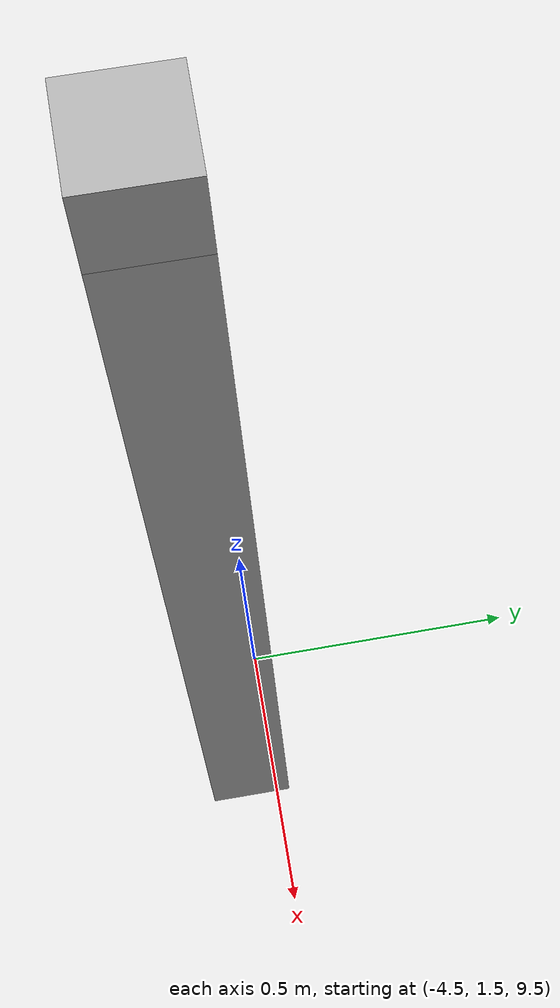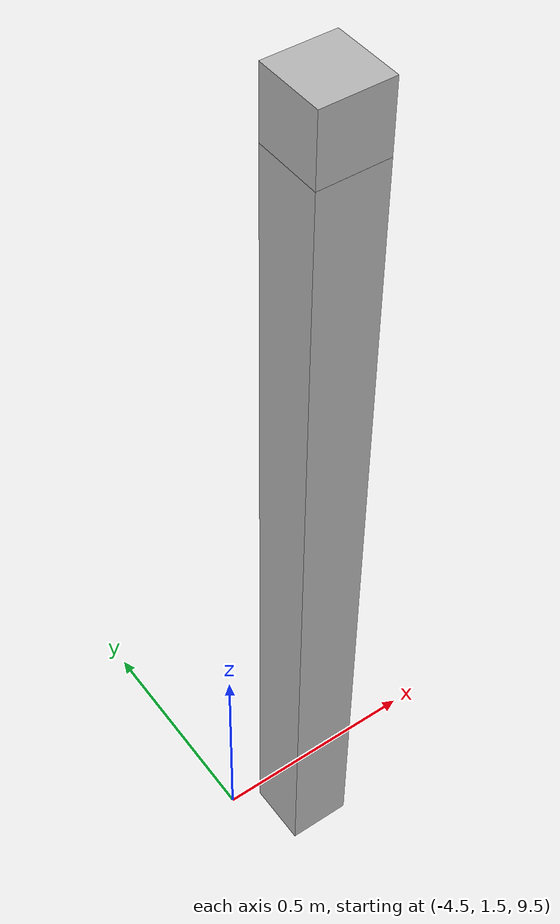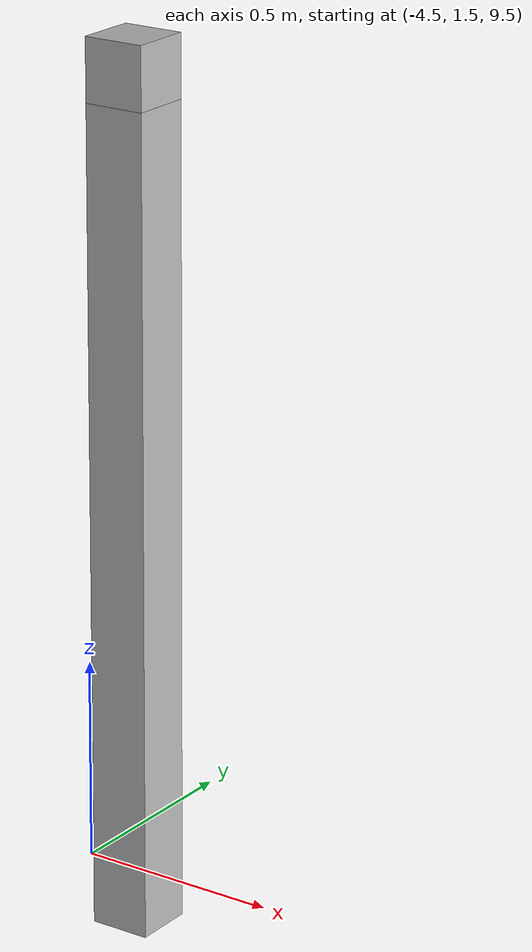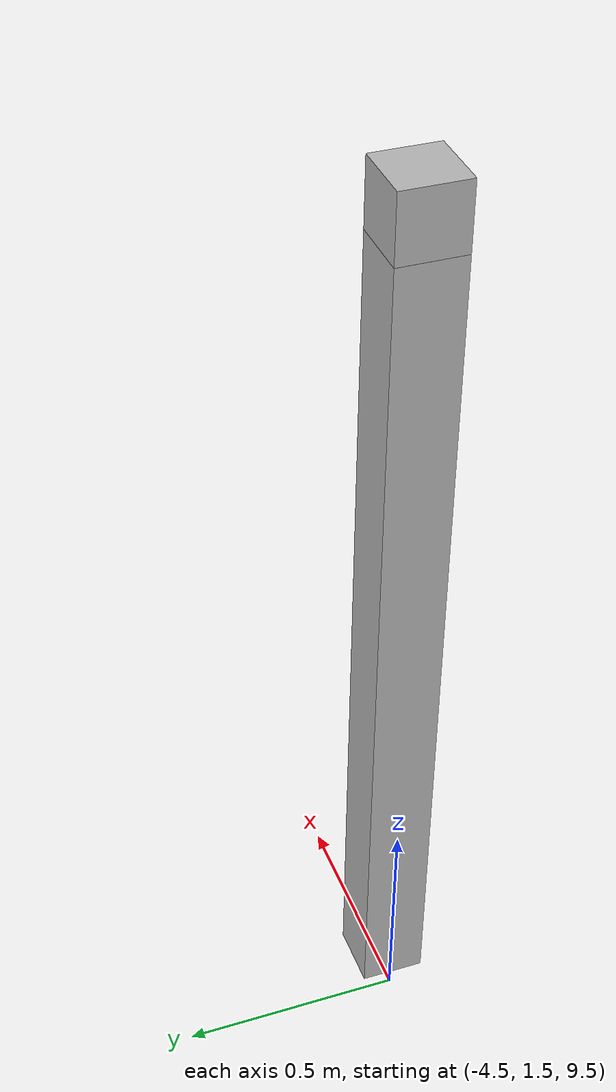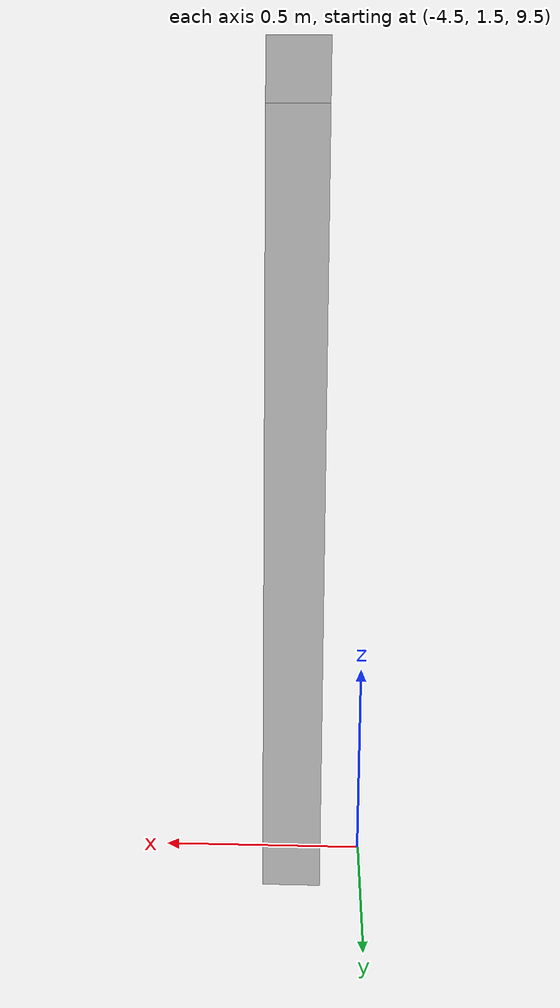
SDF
<sdf version="1.7">
 <world name="default">
  <model name="orthogonal_747_2.000.15_TS">
   <static>1</static>
   <link name="u_link_6_3_1">
    <inertial>
     <mass>1</mass>
     <inertia>
      <ixx>0.166667</ixx>
      <ixy>0</ixy>
      <ixz>0</ixz>
      <iyy>0.166667</iyy>
      <iyz>0</iyz>
      <izz>0.166667</izz>
     </inertia>
    </inertial>
    <pose>2.15 6.45 13.975 0 -0 0</pose>
    <visual name="visual_0">
     <laser_retro>5958</laser_retro>
     <geometry><box><size>0.15 1e-06 0.15</size></box></geometry>
     <material>
      <script><name>Gazebo/Grey</name><uri>file://media/materials/scripts/gazebo.material</uri></script>
      <shader type="pixel"><normal_map>__default__</normal_map></shader>
      <ambient>0.678 0.498 0.659 1</ambient>
      <diffuse>0.7 0.7 0.7 1</diffuse>
      <specular>0.01 0.01 0.01 1</specular>
      <emissive>0 0 0 1</emissive>
     </material>
     <pose>0 -0.075 0 0 -0 0</pose>
     <transparency>1</transparency>
    </visual>
    <visual name="visual_1">
     <laser_retro>5959</laser_retro>
     <geometry><box><size>0.15 1e-06 0.15</size></box></geometry>
     <material>
      <script><name>Gazebo/Grey</name><uri>file://media/materials/scripts/gazebo.material</uri></script>
      <shader type="pixel"><normal_map>__default__</normal_map></shader>
      <ambient>0.447 0.624 0.812 1</ambient>
      <diffuse>0.7 0.7 0.7 1</diffuse>
      <specular>0.01 0.01 0.01 1</specular>
      <emissive>0 0 0 1</emissive>
     </material>
     <pose>0 0.075 0 0 -0 0</pose>
     <transparency>1</transparency>
    </visual>
    <visual name="visual_2">
     <laser_retro>5960</laser_retro>
     <geometry><box><size>0.15 0.15 1e-06</size></box></geometry>
     <material>
      <script><name>Gazebo/Grey</name><uri>file://media/materials/scripts/gazebo.material</uri></script>
      <shader type="pixel"><normal_map>__default__</normal_map></shader>
      <ambient>0.988 0.686 0.243 1</ambient>
      <diffuse>0.7 0.7 0.7 1</diffuse>
      <specular>0.01 0.01 0.01 1</specular>
      <emissive>0 0 0 1</emissive>
     </material>
     <pose>0 0 -0.075 0 -0 0</pose>
     <transparency>1</transparency>
    </visual>
    <visual name="visual_3">
     <laser_retro>5961</laser_retro>
     <geometry><box><size>1e-06 0.15 0.15</size></box></geometry>
     <material>
      <script><name>Gazebo/Grey</name><uri>file://media/materials/scripts/gazebo.material</uri></script>
      <shader type="pixel"><normal_map>__default__</normal_map></shader>
      <ambient>0.988 0.914 0.31 1</ambient>
      <diffuse>0.7 0.7 0.7 1</diffuse>
      <specular>0.01 0.01 0.01 1</specular>
      <emissive>0 0 0 1</emissive>
     </material>
     <pose>0.075 0 0 0 -0 0</pose>
     <transparency>1</transparency>
    </visual>
    <visual name="visual_4">
     <laser_retro>5962</laser_retro>
     <geometry><box><size>0.15 0.15 1e-06</size></box></geometry>
     <material>
      <script><name>Gazebo/Grey</name><uri>file://media/materials/scripts/gazebo.material</uri></script>
      <shader type="pixel"><normal_map>__default__</normal_map></shader>
      <ambient>0.937 0.161 0.161 1</ambient>
      <diffuse>0.7 0.7 0.7 1</diffuse>
      <specular>0.01 0.01 0.01 1</specular>
      <emissive>0 0 0 1</emissive>
     </material>
     <pose>0 0 0.075 0 -0 0</pose>
     <transparency>1</transparency>
    </visual>
    <visual name="visual_5">
     <laser_retro>5963</laser_retro>
     <geometry><box><size>1e-06 0.15 0.15</size></box></geometry>
     <material>
      <script><name>Gazebo/Grey</name><uri>file://media/materials/scripts/gazebo.material</uri></script>
      <shader type="pixel"><normal_map>__default__</normal_map></shader>
      <ambient>0.541 0.886 0.204 1</ambient>
      <diffuse>0.7 0.7 0.7 1</diffuse>
      <specular>0.01 0.01 0.01 1</specular>
      <emissive>0 0 0 1</emissive>
     </material>
     <pose>-0.075 0 0 0 -0 0</pose>
     <transparency>1</transparency>
    </visual>
    <visual name="visual_texture">
     <geometry><box><size>0.149985 0.149985 0.149985</size></box></geometry>
     <material>
      <script>
       <uri>model://BASE_MODELS/simple_block_v2_textured/materials/scripts</uri>
       <uri>model://BASE_MODELS/simple_block_v2_textured/materials/textures</uri>
       <name>metal</name>
      </script>
     </material>
     <laser_retro>5964</laser_retro>
    </visual>
    <collision name="collision">
     <geometry><box><size>0.15 0.15 0.15</size></box></geometry>
     <surface>
      <friction>
       <ode><mu>1</mu><mu2>1</mu2><fdir1>0 0 0</fdir1><slip1>0</slip1><slip2>0</slip2></ode>
       <torsional>
        <coefficient>1</coefficient>
        <patch_radius>0</patch_radius>
        <surface_radius>0</surface_radius>
        <use_patch_radius>1</use_patch_radius>
        <ode><slip>0</slip></ode>
       </torsional>
      </friction>
      <bounce><restitution_coefficient>0</restitution_coefficient><threshold>1e+06</threshold></bounce>
      <contact>
       <collide_without_contact>0</collide_without_contact>
       <collide_without_contact_bitmask>1</collide_without_contact_bitmask>
       <collide_bitmask>1</collide_bitmask>
       <ode>
        <soft_cfm>0</soft_cfm>
        <soft_erp>0.2</soft_erp>
        <kp>1e+13</kp>
        <kd>1</kd>
        <max_vel>0.01</max_vel>
        <min_depth>0</min_depth>
       </ode>
       <bullet>
        <split_impulse>1</split_impulse>
        <split_impulse_penetration_threshold>-0.01</split_impulse_penetration_threshold>
        <soft_cfm>0</soft_cfm>
        <soft_erp>0.2</soft_erp>
        <kp>1e+13</kp>
        <kd>1</kd>
       </bullet>
      </contact>
     </surface>
    </collision>
   </link>
   <link name="z_link_6_3_1">
    <inertial>
     <mass>1</mass>
     <inertia>
      <ixx>0.166667</ixx>
      <ixy>0</ixy>
      <ixz>0</ixz>
      <iyy>0.166667</iyy>
      <iyz>0</iyz>
      <izz>0.166667</izz>
     </inertia>
    </inertial>
    <pose>2.15 6.45 12.9 0 -0 0</pose>
    <visual name="visual_0">
     <laser_retro>5965</laser_retro>
     <geometry><box><size>0.15 1e-06 2</size></box></geometry>
     <material>
      <script><name>Gazebo/Grey</name><uri>file://media/materials/scripts/gazebo.material</uri></script>
      <shader type="pixel"><normal_map>__default__</normal_map></shader>
      <ambient>0.678 0.498 0.659 1</ambient>
      <diffuse>0.7 0.7 0.7 1</diffuse>
      <specular>0.01 0.01 0.01 1</specular>
      <emissive>0 0 0 1</emissive>
     </material>
     <pose>0 -0.075 0 0 -0 0</pose>
     <transparency>1</transparency>
    </visual>
    <visual name="visual_1">
     <laser_retro>5966</laser_retro>
     <geometry><box><size>0.15 1e-06 2</size></box></geometry>
     <material>
      <script><name>Gazebo/Grey</name><uri>file://media/materials/scripts/gazebo.material</uri></script>
      <shader type="pixel"><normal_map>__default__</normal_map></shader>
      <ambient>0.447 0.624 0.812 1</ambient>
      <diffuse>0.7 0.7 0.7 1</diffuse>
      <specular>0.01 0.01 0.01 1</specular>
      <emissive>0 0 0 1</emissive>
     </material>
     <pose>0 0.075 0 0 -0 0</pose>
     <transparency>1</transparency>
    </visual>
    <visual name="visual_2">
     <laser_retro>5967</laser_retro>
     <geometry><box><size>0.15 0.15 1e-06</size></box></geometry>
     <material>
      <script><name>Gazebo/Grey</name><uri>file://media/materials/scripts/gazebo.material</uri></script>
      <shader type="pixel"><normal_map>__default__</normal_map></shader>
      <ambient>0.988 0.686 0.243 1</ambient>
      <diffuse>0.7 0.7 0.7 1</diffuse>
      <specular>0.01 0.01 0.01 1</specular>
      <emissive>0 0 0 1</emissive>
     </material>
     <pose>0 0 -1 0 -0 0</pose>
     <transparency>1</transparency>
    </visual>
    <visual name="visual_3">
     <laser_retro>5968</laser_retro>
     <geometry><box><size>1e-06 0.15 2</size></box></geometry>
     <material>
      <script><name>Gazebo/Grey</name><uri>file://media/materials/scripts/gazebo.material</uri></script>
      <shader type="pixel"><normal_map>__default__</normal_map></shader>
      <ambient>0.988 0.914 0.31 1</ambient>
      <diffuse>0.7 0.7 0.7 1</diffuse>
      <specular>0.01 0.01 0.01 1</specular>
      <emissive>0 0 0 1</emissive>
     </material>
     <pose>0.075 0 0 0 -0 0</pose>
     <transparency>1</transparency>
    </visual>
    <visual name="visual_4">
     <laser_retro>5969</laser_retro>
     <geometry><box><size>0.15 0.15 1e-06</size></box></geometry>
     <material>
      <script><name>Gazebo/Grey</name><uri>file://media/materials/scripts/gazebo.material</uri></script>
      <shader type="pixel"><normal_map>__default__</normal_map></shader>
      <ambient>0.937 0.161 0.161 1</ambient>
      <diffuse>0.7 0.7 0.7 1</diffuse>
      <specular>0.01 0.01 0.01 1</specular>
      <emissive>0 0 0 1</emissive>
     </material>
     <pose>0 0 1 0 -0 0</pose>
     <transparency>1</transparency>
    </visual>
    <visual name="visual_5">
     <laser_retro>5970</laser_retro>
     <geometry><box><size>1e-06 0.15 2</size></box></geometry>
     <material>
      <script><name>Gazebo/Grey</name><uri>file://media/materials/scripts/gazebo.material</uri></script>
      <shader type="pixel"><normal_map>__default__</normal_map></shader>
      <ambient>0.541 0.886 0.204 1</ambient>
      <diffuse>0.7 0.7 0.7 1</diffuse>
      <specular>0.01 0.01 0.01 1</specular>
      <emissive>0 0 0 1</emissive>
     </material>
     <pose>-0.075 0 0 0 -0 0</pose>
     <transparency>1</transparency>
    </visual>
    <visual name="visual_texture">
     <geometry><box><size>0.149985 0.149985 1.9998</size></box></geometry>
     <material>
      <script>
       <uri>model://BASE_MODELS/simple_block_v2_textured/materials/scripts</uri>
       <uri>model://BASE_MODELS/simple_block_v2_textured/materials/textures</uri>
       <name>metal</name>
      </script>
     </material>
     <laser_retro>5971</laser_retro>
    </visual>
    <collision name="collision">
     <geometry><box><size>0.15 0.15 2</size></box></geometry>
     <surface>
      <friction>
       <ode><mu>1</mu><mu2>1</mu2><fdir1>0 0 0</fdir1><slip1>0</slip1><slip2>0</slip2></ode>
       <torsional>
        <coefficient>1</coefficient>
        <patch_radius>0</patch_radius>
        <surface_radius>0</surface_radius>
        <use_patch_radius>1</use_patch_radius>
        <ode><slip>0</slip></ode>
       </torsional>
      </friction>
      <bounce><restitution_coefficient>0</restitution_coefficient><threshold>1e+06</threshold></bounce>
      <contact>
       <collide_without_contact>0</collide_without_contact>
       <collide_without_contact_bitmask>1</collide_without_contact_bitmask>
       <collide_bitmask>1</collide_bitmask>
       <ode>
        <soft_cfm>0</soft_cfm>
        <soft_erp>0.2</soft_erp>
        <kp>1e+13</kp>
        <kd>1</kd>
        <max_vel>0.01</max_vel>
        <min_depth>0</min_depth>
       </ode>
       <bullet>
        <split_impulse>1</split_impulse>
        <split_impulse_penetration_threshold>-0.01</split_impulse_penetration_threshold>
        <soft_cfm>0</soft_cfm>
        <soft_erp>0.2</soft_erp>
        <kp>1e+13</kp>
        <kd>1</kd>
       </bullet>
      </contact>
     </surface>
    </collision>
   </link>
   <pose>-6.47624 -5 -2.5 0 -0 0</pose>
  </model>
 </world>
</sdf>
